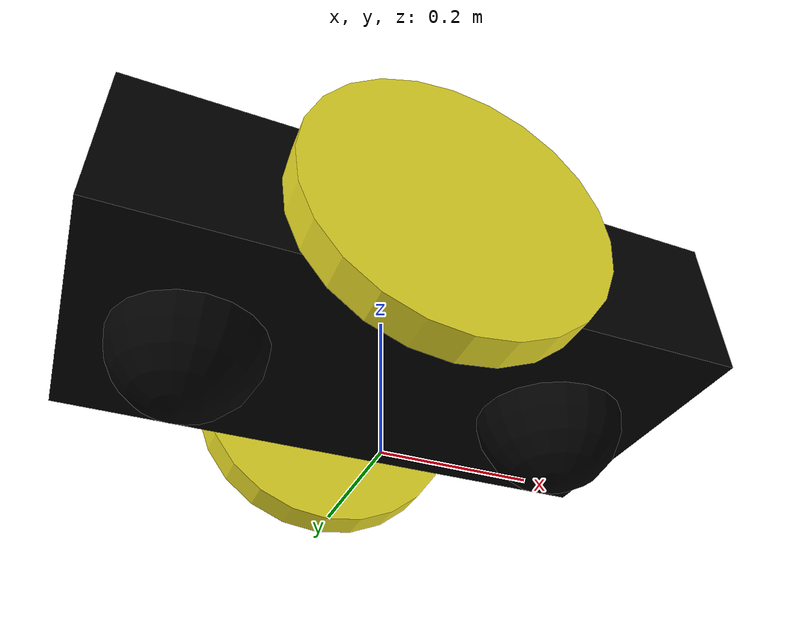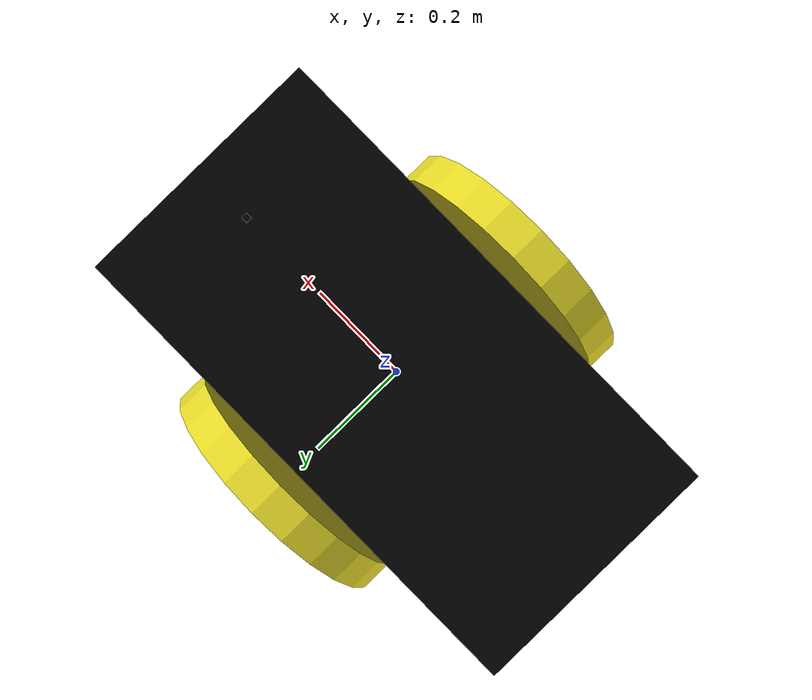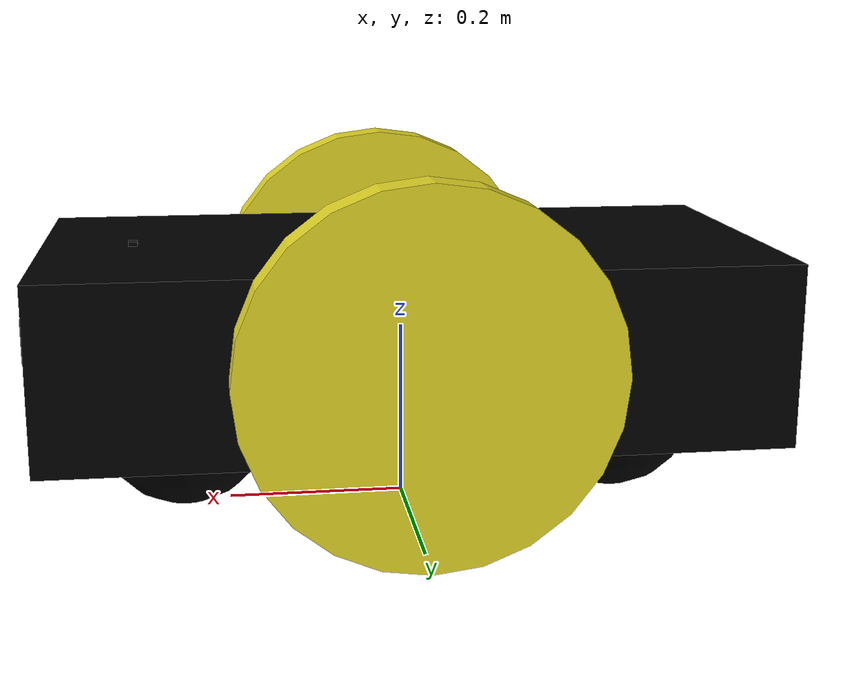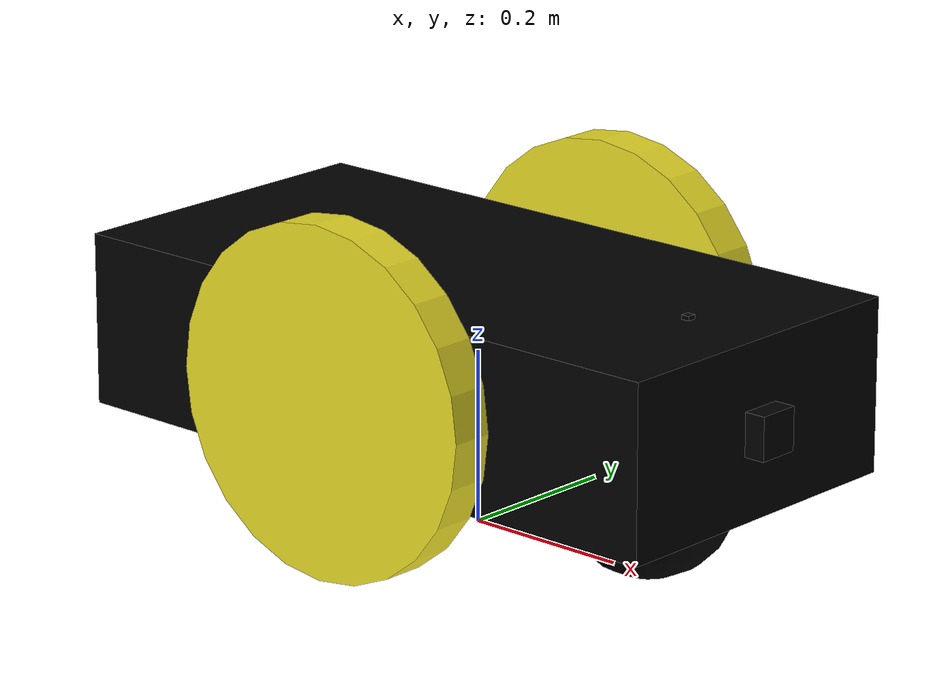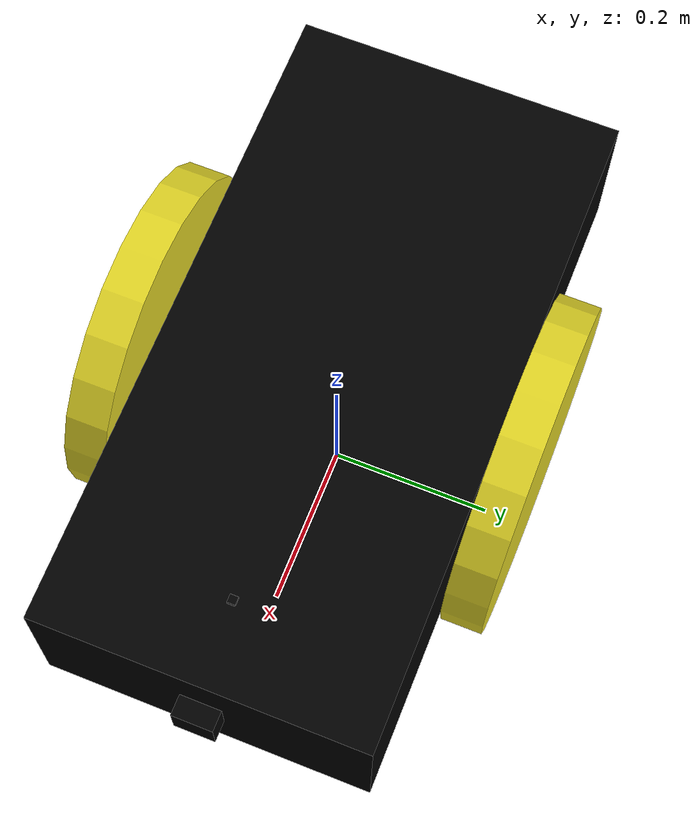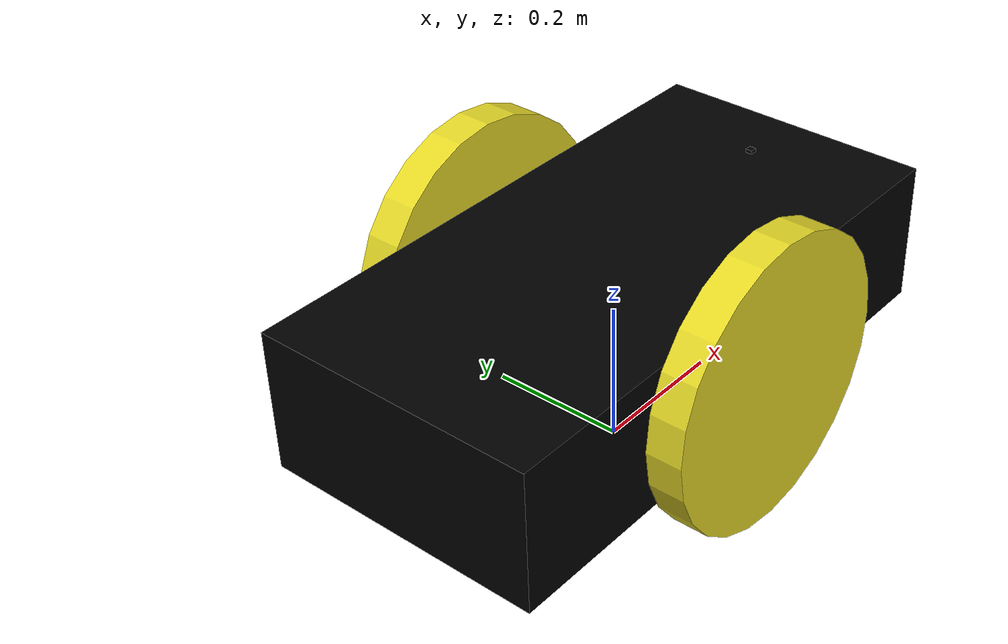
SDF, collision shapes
<?xml version='1.0'?>
<sdf version='1.7'>
  <model name='my_robot'>
    <link name='robot_footprint'>
      <pose>0 0 0 0 -0 0</pose>
      <inertial>
        <pose>0.001329 0 0.2 0 -0 0</pose>
        <mass>30.1</mass>
        <inertia>
          <ixx>0.100002</ixx>
          <ixy>0</ixy>
          <ixz>0</ixz>
          <iyy>0.11595</iyy>
          <iyz>0</iyz>
          <izz>0.11595</izz>
        </inertia>
      </inertial>
      <self_collide>0</self_collide>
      <kinematic>0</kinematic>
      <velocity_decay/>
      <sensor name='camera1' type='camera'>
        <update_rate>30</update_rate>
        <camera name='head'>
          <horizontal_fov>1.39626</horizontal_fov>
          <image>
            <width>800</width>
            <height>800</height>
            <format>R8G8B8</format>
          </image>
          <clip>
            <near>0.02</near>
            <far>300</far>
          </clip>
        </camera>
        <plugin name='camera_controller' filename='libgazebo_ros_camera.so'>
          <alwaysOn>1</alwaysOn>
          <updateRate>0.0</updateRate>
          <cameraName>camera</cameraName>
          <imageTopicName>rgb/image_raw</imageTopicName>
          <cameraInfoTopicName>rgb/camera_info</cameraInfoTopicName>
          <frameName>camera</frameName>
          <hackBaseline>0.07</hackBaseline>
          <distortionK1>0.0</distortionK1>
          <distortionK2>0.0</distortionK2>
          <distortionK3>0.0</distortionK3>
          <distortionT1>0.0</distortionT1>
          <distortionT2>0.0</distortionT2>
          <robotNamespace>/</robotNamespace>
        </plugin>
        <pose>0.4 0 0.2 0 -0 0</pose>
      </sensor>
      <sensor name='head_hokuyo_sensor' type='ray'>
        <visualize>0</visualize>
        <update_rate>40</update_rate>
        <ray>
          <scan>
            <horizontal>
              <samples>720</samples>
              <resolution>1</resolution>
              <min_angle>-1.5708</min_angle>
              <max_angle>1.5708</max_angle>
            </horizontal>
            <vertical>
              <samples>1</samples>
              <min_angle>0</min_angle>
              <max_angle>0</max_angle>
            </vertical>
          </scan>
          <range>
            <min>0.1</min>
            <max>30</max>
            <resolution>0.01</resolution>
          </range>
          <noise>
            <type>gaussian</type>
            <mean>0</mean>
            <stddev>0.01</stddev>
          </noise>
        </ray>
        <plugin name='gazebo_ros_head_hokuyo_controller' filename='libgazebo_ros_laser.so'>
          <topicName>/scan</topicName>
          <frameName>hokuyo</frameName>
          <robotNamespace>/</robotNamespace>
        </plugin>
        <pose>0.3 0 0.3 0 -0 0</pose>
      </sensor>
      <gravity>1</gravity>
      <enable_wind>0</enable_wind>
      <visual name='robot_footprint_fixed_joint_lump__hokuyo_visual_visual_4'>
        <pose>0.4 0 0.3 0 -0 0</pose>
        <geometry>
          <mesh>
            <uri>/home/marcio/estudos/where_I_am/catkin_ws/src/my_robot/meshes/hokuyo.dae</uri>
          </mesh>
        </geometry>
        <material>
          <script>
            <uri>__default__</uri>
            <name>ModelPreview_1::robot_footprint::robot_footprint_fixed_joint_lump__hokuyo_visual_visual_4_MATERIAL_</name>
          </script>
          <shader type='pixel'>
            <normal_map>__default__</normal_map>
          </shader>
          <ambient>0 0 0 1</ambient>
          <diffuse>0 0 0 1</diffuse>
          <specular>0 0 0 1</specular>
          <emissive>0 0 0 1</emissive>
        </material>
        <cast_shadows>1</cast_shadows>
        <transparency>0</transparency>
      </visual>
      <visual name='robot_footprint_fixed_joint_lump__camera_visual_visual_3'>
        <pose>0.4 0 0.2 0 -0 0</pose>
        <geometry>
          <box>
            <size>0.05 0.05 0.05</size>
          </box>
        </geometry>
        <material>
          <script>
            <name>Gazebo/Blue</name>
            <uri>file://media/materials/scripts/gazebo.material</uri>
          </script>
          <shader type='pixel'>
            <normal_map>__default__</normal_map>
          </shader>
          <ambient>0 0 1 1</ambient>
          <diffuse>0 0 1 1</diffuse>
          <specular>0.1 0.1 0.1 1</specular>
          <emissive>0 0 0 1</emissive>
        </material>
        <transparency>0</transparency>
        <cast_shadows>1</cast_shadows>
      </visual>
      <visual name='robot_footprint_fixed_joint_lump__back_caster_visual_visual_1'>
        <pose>-0.25 0 0.1 0 -0 0</pose>
        <geometry>
          <sphere>
            <radius>0.1</radius>
          </sphere>
        </geometry>
        <material>
          <shader type='pixel'>
            <normal_map>__default__</normal_map>
          </shader>
          <script>
            <name>ModelPreview_1::robot_footprint::robot_footprint_fixed_joint_lump__back_caster_visual_visual_1_MATERIAL_</name>
            <uri>__default__</uri>
          </script>
          <ambient>0 0 0 1</ambient>
          <diffuse>0 0 0 1</diffuse>
          <specular>0 0 0 1</specular>
          <emissive>0 0 0 1</emissive>
        </material>
        <cast_shadows>1</cast_shadows>
        <transparency>0</transparency>
      </visual>
      <visual name='robot_footprint_fixed_joint_lump__chassis_visual_visual'>
        <pose>0 0 0.2 0 -0 0</pose>
        <geometry>
          <box>
            <size>0.8 0.4 0.2</size>
          </box>
        </geometry>
        <material>
          <script>
            <name>Gazebo/Green</name>
            <uri>file://media/materials/scripts/gazebo.material</uri>
          </script>
          <shader type='pixel'>
            <normal_map>__default__</normal_map>
          </shader>
          <ambient>0 1 0 1</ambient>
          <diffuse>0 1 0 1</diffuse>
          <specular>0.1 0.1 0.1 1</specular>
          <emissive>0 0 0 1</emissive>
        </material>
        <transparency>0</transparency>
        <cast_shadows>1</cast_shadows>
      </visual>
      <visual name='robot_footprint_fixed_joint_lump__front_caster_visual_visual_2'>
        <pose>0.25 0 0.1 0 -0 0</pose>
        <geometry>
          <sphere>
            <radius>0.1</radius>
          </sphere>
        </geometry>
        <material>
          <shader type='pixel'>
            <normal_map>__default__</normal_map>
          </shader>
          <script>
            <name>ModelPreview_1::robot_footprint::robot_footprint_fixed_joint_lump__front_caster_visual_visual_2_MATERIAL_</name>
            <uri>__default__</uri>
          </script>
          <ambient>0 0 0 1</ambient>
          <diffuse>0 0 0 1</diffuse>
          <specular>0 0 0 1</specular>
          <emissive>0 0 0 1</emissive>
        </material>
        <cast_shadows>1</cast_shadows>
        <transparency>0</transparency>
      </visual>
      <collision name='robot_footprint_fixed_joint_lump__collision_collision_4'>
        <laser_retro>0</laser_retro>
        <max_contacts>10</max_contacts>
        <pose>0.3 0 0.3 0 -0 0</pose>
        <geometry>
          <box>
            <size>0.01 0.01 0.01</size>
          </box>
        </geometry>
        <surface>
          <friction>
            <ode>
              <mu>1</mu>
              <mu2>1</mu2>
              <fdir1>0 0 0</fdir1>
              <slip1>0</slip1>
              <slip2>0</slip2>
            </ode>
            <torsional>
              <coefficient>1</coefficient>
              <patch_radius>0</patch_radius>
              <surface_radius>0</surface_radius>
              <use_patch_radius>1</use_patch_radius>
              <ode>
                <slip>0</slip>
              </ode>
            </torsional>
          </friction>
          <bounce>
            <restitution_coefficient>0</restitution_coefficient>
            <threshold>1e+06</threshold>
          </bounce>
          <contact>
            <collide_without_contact>0</collide_without_contact>
            <collide_without_contact_bitmask>1</collide_without_contact_bitmask>
            <collide_bitmask>1</collide_bitmask>
            <ode>
              <soft_cfm>0</soft_cfm>
              <soft_erp>0.2</soft_erp>
              <kp>1e+13</kp>
              <kd>1</kd>
              <max_vel>0.01</max_vel>
              <min_depth>0</min_depth>
            </ode>
            <bullet>
              <split_impulse>1</split_impulse>
              <split_impulse_penetration_threshold>-0.01</split_impulse_penetration_threshold>
              <soft_cfm>0</soft_cfm>
              <soft_erp>0.2</soft_erp>
              <kp>1e+13</kp>
              <kd>1</kd>
            </bullet>
          </contact>
        </surface>
      </collision>
      <collision name='robot_footprint_fixed_joint_lump__collision_collision_3'>
        <laser_retro>0</laser_retro>
        <max_contacts>10</max_contacts>
        <pose>0.4 0 0.2 0 -0 0</pose>
        <geometry>
          <box>
            <size>0.05 0.05 0.05</size>
          </box>
        </geometry>
        <surface>
          <friction>
            <ode>
              <mu>1</mu>
              <mu2>1</mu2>
              <fdir1>0 0 0</fdir1>
              <slip1>0</slip1>
              <slip2>0</slip2>
            </ode>
            <torsional>
              <coefficient>1</coefficient>
              <patch_radius>0</patch_radius>
              <surface_radius>0</surface_radius>
              <use_patch_radius>1</use_patch_radius>
              <ode>
                <slip>0</slip>
              </ode>
            </torsional>
          </friction>
          <bounce>
            <restitution_coefficient>0</restitution_coefficient>
            <threshold>1e+06</threshold>
          </bounce>
          <contact>
            <collide_without_contact>0</collide_without_contact>
            <collide_without_contact_bitmask>1</collide_without_contact_bitmask>
            <collide_bitmask>1</collide_bitmask>
            <ode>
              <soft_cfm>0</soft_cfm>
              <soft_erp>0.2</soft_erp>
              <kp>1e+13</kp>
              <kd>1</kd>
              <max_vel>0.01</max_vel>
              <min_depth>0</min_depth>
            </ode>
            <bullet>
              <split_impulse>1</split_impulse>
              <split_impulse_penetration_threshold>-0.01</split_impulse_penetration_threshold>
              <soft_cfm>0</soft_cfm>
              <soft_erp>0.2</soft_erp>
              <kp>1e+13</kp>
              <kd>1</kd>
            </bullet>
          </contact>
        </surface>
      </collision>
      <collision name='robot_footprint_fixed_joint_lump__collision_collision'>
        <laser_retro>0</laser_retro>
        <max_contacts>10</max_contacts>
        <pose>0 0 0.2 0 -0 0</pose>
        <geometry>
          <box>
            <size>0.8 0.4 0.2</size>
          </box>
        </geometry>
        <surface>
          <friction>
            <ode>
              <mu>1</mu>
              <mu2>1</mu2>
              <fdir1>0 0 0</fdir1>
              <slip1>0</slip1>
              <slip2>0</slip2>
            </ode>
            <torsional>
              <coefficient>1</coefficient>
              <patch_radius>0</patch_radius>
              <surface_radius>0</surface_radius>
              <use_patch_radius>1</use_patch_radius>
              <ode>
                <slip>0</slip>
              </ode>
            </torsional>
          </friction>
          <bounce>
            <restitution_coefficient>0</restitution_coefficient>
            <threshold>1e+06</threshold>
          </bounce>
          <contact>
            <collide_without_contact>0</collide_without_contact>
            <collide_without_contact_bitmask>1</collide_without_contact_bitmask>
            <collide_bitmask>1</collide_bitmask>
            <ode>
              <soft_cfm>0</soft_cfm>
              <soft_erp>0.2</soft_erp>
              <kp>1e+13</kp>
              <kd>1</kd>
              <max_vel>0.01</max_vel>
              <min_depth>0</min_depth>
            </ode>
            <bullet>
              <split_impulse>1</split_impulse>
              <split_impulse_penetration_threshold>-0.01</split_impulse_penetration_threshold>
              <soft_cfm>0</soft_cfm>
              <soft_erp>0.2</soft_erp>
              <kp>1e+13</kp>
              <kd>1</kd>
            </bullet>
          </contact>
        </surface>
      </collision>
      <collision name='robot_footprint_fixed_joint_lump__back_caster_collision_collision_1'>
        <laser_retro>0</laser_retro>
        <max_contacts>10</max_contacts>
        <pose>-0.25 0 0.1 0 -0 0</pose>
        <geometry>
          <sphere>
            <radius>0.0998</radius>
          </sphere>
        </geometry>
        <surface>
          <friction>
            <ode>
              <mu>1</mu>
              <mu2>1</mu2>
              <fdir1>0 0 0</fdir1>
              <slip1>0</slip1>
              <slip2>0</slip2>
            </ode>
            <torsional>
              <coefficient>1</coefficient>
              <patch_radius>0</patch_radius>
              <surface_radius>0</surface_radius>
              <use_patch_radius>1</use_patch_radius>
              <ode>
                <slip>0</slip>
              </ode>
            </torsional>
          </friction>
          <bounce>
            <restitution_coefficient>0</restitution_coefficient>
            <threshold>1e+06</threshold>
          </bounce>
          <contact>
            <collide_without_contact>0</collide_without_contact>
            <collide_without_contact_bitmask>1</collide_without_contact_bitmask>
            <collide_bitmask>1</collide_bitmask>
            <ode>
              <soft_cfm>0</soft_cfm>
              <soft_erp>0.2</soft_erp>
              <kp>1e+13</kp>
              <kd>1</kd>
              <max_vel>0.01</max_vel>
              <min_depth>0</min_depth>
            </ode>
            <bullet>
              <split_impulse>1</split_impulse>
              <split_impulse_penetration_threshold>-0.01</split_impulse_penetration_threshold>
              <soft_cfm>0</soft_cfm>
              <soft_erp>0.2</soft_erp>
              <kp>1e+13</kp>
              <kd>1</kd>
            </bullet>
          </contact>
        </surface>
      </collision>
      <collision name='robot_footprint_fixed_joint_lump__front_caster_collision_collision_2'>
        <laser_retro>0</laser_retro>
        <max_contacts>10</max_contacts>
        <pose>0.25 0 0.1 0 -0 0</pose>
        <geometry>
          <sphere>
            <radius>0.0998</radius>
          </sphere>
        </geometry>
        <surface>
          <friction>
            <ode>
              <mu>1</mu>
              <mu2>1</mu2>
              <fdir1>0 0 0</fdir1>
              <slip1>0</slip1>
              <slip2>0</slip2>
            </ode>
            <torsional>
              <coefficient>1</coefficient>
              <patch_radius>0</patch_radius>
              <surface_radius>0</surface_radius>
              <use_patch_radius>1</use_patch_radius>
              <ode>
                <slip>0</slip>
              </ode>
            </torsional>
          </friction>
          <bounce>
            <restitution_coefficient>0</restitution_coefficient>
            <threshold>1e+06</threshold>
          </bounce>
          <contact>
            <collide_without_contact>0</collide_without_contact>
            <collide_without_contact_bitmask>1</collide_without_contact_bitmask>
            <collide_bitmask>1</collide_bitmask>
            <ode>
              <soft_cfm>0</soft_cfm>
              <soft_erp>0.2</soft_erp>
              <kp>1e+13</kp>
              <kd>1</kd>
              <max_vel>0.01</max_vel>
              <min_depth>0</min_depth>
            </ode>
            <bullet>
              <split_impulse>1</split_impulse>
              <split_impulse_penetration_threshold>-0.01</split_impulse_penetration_threshold>
              <soft_cfm>0</soft_cfm>
              <soft_erp>0.2</soft_erp>
              <kp>1e+13</kp>
              <kd>1</kd>
            </bullet>
          </contact>
        </surface>
      </collision>
    </link>
    <link name='left_wheel'>
      <pose>0 0.3 0.2 0 -0 0</pose>
      <inertial>
        <pose>0 0 0 0 -0 0</pose>
        <mass>5</mass>
        <inertia>
          <ixx>0.1</ixx>
          <ixy>0</ixy>
          <ixz>0</ixz>
          <iyy>0.1</iyy>
          <iyz>0</iyz>
          <izz>0.1</izz>
        </inertia>
      </inertial>
      <self_collide>0</self_collide>
      <kinematic>0</kinematic>
      <velocity_decay/>
      <enable_wind>0</enable_wind>
      <visual name='left_wheel_visual_visual'>
        <pose>0 -0.07 0 -3.12268 1.57079 -1.55198</pose>
        <geometry>
          <cylinder>
            <length>0.05</length>
            <radius>0.2</radius>
          </cylinder>
        </geometry>
        <material>
          <script>
            <name>Gazebo/Yellow</name>
            <uri>file://media/materials/scripts/gazebo.material</uri>
          </script>
          <shader type='pixel'/>
          <ambient>1 1 0 1</ambient>
          <diffuse>1 1 0 1</diffuse>
          <specular>0 0 0 0</specular>
          <emissive>0 0 0 1</emissive>
        </material>
        <transparency>0</transparency>
        <cast_shadows>1</cast_shadows>
      </visual>
      <collision name='left_wheel_fixed_joint_lump__collision_collision'>
        <laser_retro>0</laser_retro>
        <max_contacts>10</max_contacts>
        <pose>0 -0.07 0 3.14159 1.57079 -1.57089</pose>
        <geometry>
          <cylinder>
            <radius>0.2</radius>
            <length>0.05</length>
          </cylinder>
        </geometry>
        <surface>
          <friction>
            <ode>
              <mu>1</mu>
              <mu2>1</mu2>
              <fdir1>0 0 0</fdir1>
              <slip1>0</slip1>
              <slip2>0</slip2>
            </ode>
            <torsional>
              <coefficient>1</coefficient>
              <patch_radius>0</patch_radius>
              <surface_radius>0</surface_radius>
              <use_patch_radius>1</use_patch_radius>
              <ode>
                <slip>0</slip>
              </ode>
            </torsional>
          </friction>
          <bounce>
            <restitution_coefficient>0</restitution_coefficient>
            <threshold>1e+06</threshold>
          </bounce>
          <contact>
            <collide_without_contact>0</collide_without_contact>
            <collide_without_contact_bitmask>1</collide_without_contact_bitmask>
            <collide_bitmask>1</collide_bitmask>
            <ode>
              <soft_cfm>0</soft_cfm>
              <soft_erp>0.2</soft_erp>
              <kp>1e+13</kp>
              <kd>1</kd>
              <max_vel>0.01</max_vel>
              <min_depth>0</min_depth>
            </ode>
            <bullet>
              <split_impulse>1</split_impulse>
              <split_impulse_penetration_threshold>-0.01</split_impulse_penetration_threshold>
              <soft_cfm>0</soft_cfm>
              <soft_erp>0.2</soft_erp>
              <kp>1e+13</kp>
              <kd>1</kd>
            </bullet>
          </contact>
        </surface>
      </collision>
    </link>
    <link name='right_wheel'>
      <pose>0 -0.3 0.2 0 -0 0</pose>
      <inertial>
        <pose>0 0 0 0 -0 0</pose>
        <mass>5</mass>
        <inertia>
          <ixx>0.1</ixx>
          <ixy>0</ixy>
          <ixz>0</ixz>
          <iyy>0.1</iyy>
          <iyz>0</iyz>
          <izz>0.1</izz>
        </inertia>
      </inertial>
      <self_collide>0</self_collide>
      <kinematic>0</kinematic>
      <velocity_decay/>
      <enable_wind>0</enable_wind>
      <visual name='right_wheel_visual_visual'>
        <pose>0 0.07 0 -3.12268 1.57079 -1.55198</pose>
        <geometry>
          <cylinder>
            <length>0.05</length>
            <radius>0.2</radius>
          </cylinder>
        </geometry>
        <material>
          <script>
            <name>Gazebo/Yellow</name>
            <uri>file://media/materials/scripts/gazebo.material</uri>
          </script>
          <shader type='pixel'/>
          <ambient>1 1 0 1</ambient>
          <diffuse>1 1 0 1</diffuse>
          <specular>0 0 0 0</specular>
          <emissive>0 0 0 1</emissive>
        </material>
        <transparency>0</transparency>
        <cast_shadows>1</cast_shadows>
      </visual>
      <collision name='right_wheel_fixed_joint_lump__collision_collision'>
        <laser_retro>0</laser_retro>
        <max_contacts>10</max_contacts>
        <pose>0 0.07 0 3.14159 1.57079 -1.57089</pose>
        <geometry>
          <cylinder>
            <radius>0.2</radius>
            <length>0.05</length>
          </cylinder>
        </geometry>
        <surface>
          <friction>
            <ode>
              <mu>1</mu>
              <mu2>1</mu2>
              <fdir1>0 0 0</fdir1>
              <slip1>0</slip1>
              <slip2>0</slip2>
            </ode>
            <torsional>
              <coefficient>1</coefficient>
              <patch_radius>0</patch_radius>
              <surface_radius>0</surface_radius>
              <use_patch_radius>1</use_patch_radius>
              <ode>
                <slip>0</slip>
              </ode>
            </torsional>
          </friction>
          <bounce>
            <restitution_coefficient>0</restitution_coefficient>
            <threshold>1e+06</threshold>
          </bounce>
          <contact>
            <collide_without_contact>0</collide_without_contact>
            <collide_without_contact_bitmask>1</collide_without_contact_bitmask>
            <collide_bitmask>1</collide_bitmask>
            <ode>
              <soft_cfm>0</soft_cfm>
              <soft_erp>0.2</soft_erp>
              <kp>1e+13</kp>
              <kd>1</kd>
              <max_vel>0.01</max_vel>
              <min_depth>0</min_depth>
            </ode>
            <bullet>
              <split_impulse>1</split_impulse>
              <split_impulse_penetration_threshold>-0.01</split_impulse_penetration_threshold>
              <soft_cfm>0</soft_cfm>
              <soft_erp>0.2</soft_erp>
              <kp>1e+13</kp>
              <kd>1</kd>
            </bullet>
          </contact>
        </surface>
      </collision>
    </link>
    <joint name='left_wheel_hinge' type='revolute'>
      <parent>robot_footprint</parent>
      <child>left_wheel</child>
      <pose>0 0 0 0 -0 0</pose>
      <axis>
        <xyz>0 1 0</xyz>
        <limit>
          <lower>-1e+16</lower>
          <upper>1e+16</upper>
          <effort>-1</effort>
          <velocity>-1</velocity>
        </limit>
        <dynamics>
          <spring_reference>0</spring_reference>
          <spring_stiffness>0</spring_stiffness>
          <damping>1</damping>
          <friction>1</friction>
        </dynamics>
      </axis>
      <physics>
        <ode>
          <limit>
            <cfm>0</cfm>
            <erp>0.2</erp>
          </limit>
          <suspension>
            <cfm>0</cfm>
            <erp>0.2</erp>
          </suspension>
        </ode>
      </physics>
    </joint>
    <joint name='right_wheel_hinge' type='revolute'>
      <parent>robot_footprint</parent>
      <child>right_wheel</child>
      <pose>0 0 0 0 -0 0</pose>
      <axis>
        <xyz>0 1 0</xyz>
        <limit>
          <lower>-1e+16</lower>
          <upper>1e+16</upper>
          <effort>-1</effort>
          <velocity>-1</velocity>
        </limit>
        <dynamics>
          <spring_reference>0</spring_reference>
          <spring_stiffness>0</spring_stiffness>
          <damping>1</damping>
          <friction>1</friction>
        </dynamics>
      </axis>
      <physics>
        <ode>
          <limit>
            <cfm>0</cfm>
            <erp>0.2</erp>
          </limit>
          <suspension>
            <cfm>0</cfm>
            <erp>0.2</erp>
          </suspension>
        </ode>
      </physics>
    </joint>
    <static>0</static>
    <allow_auto_disable>1</allow_auto_disable>
    <plugin name='differential_drive_controller' filename='libgazebo_ros_diff_drive.so'>
      <legacyMode>0</legacyMode>
      <alwaysOn>1</alwaysOn>
      <updateRate>10</updateRate>
      <leftJoint>left_wheel_hinge</leftJoint>
      <rightJoint>right_wheel_hinge</rightJoint>
      <wheelSeparation>0.4</wheelSeparation>
      <wheelDiameter>0.2</wheelDiameter>
      <torque>10</torque>
      <commandTopic>cmd_vel</commandTopic>
      <odometryTopic>odom</odometryTopic>
      <odometryFrame>odom</odometryFrame>
      <robotBaseFrame>robot_footprint</robotBaseFrame>
      <publishWheelTF>0</publishWheelTF>
      <publishWheelJointState>0</publishWheelJointState>
      <rosDebugLevel>na</rosDebugLevel>
      <wheelAcceleration>0</wheelAcceleration>
      <wheelTorque>5</wheelTorque>
      <odometrySource>world</odometrySource>
      <publishTf>1</publishTf>
      <publishOdomTF>1</publishOdomTF>
      <robotNamespace>/</robotNamespace>
    </plugin>
  </model>
</sdf>
